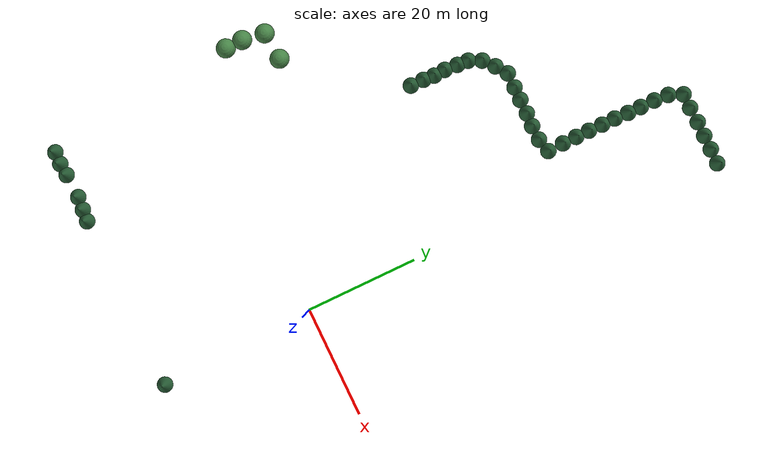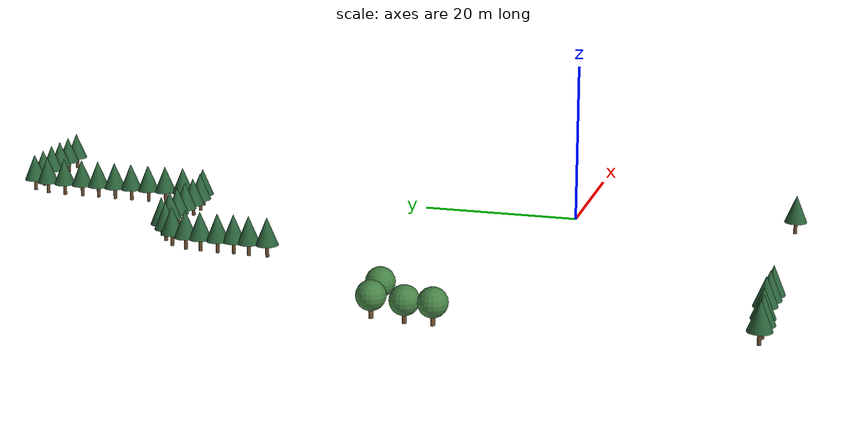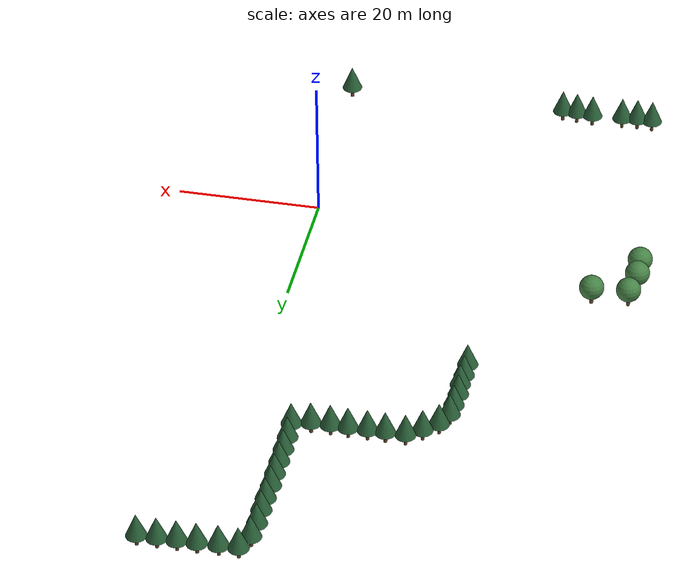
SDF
<sdf version="1.9">
 <world name="campus_pucrs">
  <model name="oak_tree_29">
   <static>true</static>
   <link name="link">
    <collision name="trunk_collision">
     <pose>-46.5377 6.48958 0.8 0.0 0.0 0</pose>
     <geometry><cylinder><radius>0.25</radius><length>1.6</length></cylinder></geometry>
    </collision>
    <visual name="trunk_visual">
     <pose>-46.5377 6.48958 0.8 0.0 0.0 0</pose>
     <geometry><cylinder><radius>0.25</radius><length>1.6</length></cylinder></geometry>
     <material><ambient>0.252 0.180 0.108 1</ambient><diffuse>0.42 0.3 0.18 1</diffuse></material>
    </visual>
    <visual name="crown_visual">
     <pose>-46.5377 6.48958 2.6 0 0 0</pose>
     <geometry><sphere><radius>1.7</radius></sphere></geometry>
     <material><ambient>0.168 0.312 0.168 1</ambient><diffuse>0.28 0.52 0.28 1</diffuse></material>
    </visual>
   </link>
  </model>
  <model name="oak_tree_30">
   <static>true</static>
   <link name="link">
    <collision name="trunk_collision">
     <pose>-46.6255 9.61611 0.8 0.0 0.0 0</pose>
     <geometry><cylinder><radius>0.25</radius><length>1.6</length></cylinder></geometry>
    </collision>
    <visual name="trunk_visual">
     <pose>-46.6255 9.61611 0.8 0.0 0.0 0</pose>
     <geometry><cylinder><radius>0.25</radius><length>1.6</length></cylinder></geometry>
     <material><ambient>0.252 0.180 0.108 1</ambient><diffuse>0.42 0.3 0.18 1</diffuse></material>
    </visual>
    <visual name="crown_visual">
     <pose>-46.6255 9.61611 2.6 0 0 0</pose>
     <geometry><sphere><radius>1.7</radius></sphere></geometry>
     <material><ambient>0.168 0.312 0.168 1</ambient><diffuse>0.28 0.52 0.28 1</diffuse></material>
    </visual>
   </link>
  </model>
  <model name="oak_tree_31">
   <static>true</static>
   <link name="link">
    <collision name="trunk_collision">
     <pose>-46.0 13.5661 0.8 0.0 0.0 0</pose>
     <geometry><cylinder><radius>0.25</radius><length>1.6</length></cylinder></geometry>
    </collision>
    <visual name="trunk_visual">
     <pose>-46.0 13.5661 0.8 0.0 0.0 0</pose>
     <geometry><cylinder><radius>0.25</radius><length>1.6</length></cylinder></geometry>
     <material><ambient>0.252 0.180 0.108 1</ambient><diffuse>0.42 0.3 0.18 1</diffuse></material>
    </visual>
    <visual name="crown_visual">
     <pose>-46.0 13.5661 2.6 0 0 0</pose>
     <geometry><sphere><radius>1.7</radius></sphere></geometry>
     <material><ambient>0.168 0.312 0.168 1</ambient><diffuse>0.28 0.52 0.28 1</diffuse></material>
    </visual>
   </link>
  </model>
  <model name="oak_tree_32">
   <static>true</static>
   <link name="link">
    <collision name="trunk_collision">
     <pose>-41.0 14.0 0.8 0.0 0.0 0</pose>
     <geometry><cylinder><radius>0.25</radius><length>1.6</length></cylinder></geometry>
    </collision>
    <visual name="trunk_visual">
     <pose>-41.0 14.0 0.8 0.0 0.0 0</pose>
     <geometry><cylinder><radius>0.25</radius><length>1.6</length></cylinder></geometry>
     <material><ambient>0.252 0.180 0.108 1</ambient><diffuse>0.42 0.3 0.18 1</diffuse></material>
    </visual>
    <visual name="crown_visual">
     <pose>-41.0 14.0 2.6 0 0 0</pose>
     <geometry><sphere><radius>1.7</radius></sphere></geometry>
     <material><ambient>0.168 0.312 0.168 1</ambient><diffuse>0.28 0.52 0.28 1</diffuse></material>
    </visual>
   </link>
  </model>
  <model name="pine_tree_0">
   <static>true</static>
   <link name="link">
    <collision name="trunk_collision">
     <pose>-43.1953 -27.683 0.95 0.0 0.0 0</pose>
     <geometry><cylinder><radius>0.22</radius><length>1.9</length></cylinder></geometry>
    </collision>
    <visual name="trunk_visual">
     <pose>-43.1953 -27.683 0.95 0.0 0.0 0</pose>
     <geometry><cylinder><radius>0.22</radius><length>1.9</length></cylinder></geometry>
     <material><ambient>0.228 0.162 0.096 1</ambient><diffuse>0.38 0.27 0.16 1</diffuse></material>
    </visual>
    <visual name="crown_visual">
     <pose>-43.1953 -27.683 3.2 0 0 0</pose>
     <geometry><cone><radius>1.4</radius><length>3.4</length></cone></geometry>
     <material><ambient>0.096 0.228 0.132 1</ambient><diffuse>0.16 0.38 0.22 1</diffuse></material>
    </visual>
   </link>
  </model>
  <model name="pine_tree_1">
   <static>true</static>
   <link name="link">
    <collision name="trunk_collision">
     <pose>-38.8581 -27.6066 0.95 0.0 0.0 0</pose>
     <geometry><cylinder><radius>0.22</radius><length>1.9</length></cylinder></geometry>
    </collision>
    <visual name="trunk_visual">
     <pose>-38.8581 -27.6066 0.95 0.0 0.0 0</pose>
     <geometry><cylinder><radius>0.22</radius><length>1.9</length></cylinder></geometry>
     <material><ambient>0.228 0.162 0.096 1</ambient><diffuse>0.38 0.27 0.16 1</diffuse></material>
    </visual>
    <visual name="crown_visual">
     <pose>-38.8581 -27.6066 3.2 0 0 0</pose>
     <geometry><cone><radius>1.4</radius><length>3.4</length></cone></geometry>
     <material><ambient>0.096 0.228 0.132 1</ambient><diffuse>0.16 0.38 0.22 1</diffuse></material>
    </visual>
   </link>
  </model>
  <model name="pine_tree_2">
   <static>true</static>
   <link name="link">
    <collision name="trunk_collision">
     <pose>-41.0353 -27.7768 0.95 0.0 0.0 0</pose>
     <geometry><cylinder><radius>0.22</radius><length>1.9</length></cylinder></geometry>
    </collision>
    <visual name="trunk_visual">
     <pose>-41.0353 -27.7768 0.95 0.0 0.0 0</pose>
     <geometry><cylinder><radius>0.22</radius><length>1.9</length></cylinder></geometry>
     <material><ambient>0.228 0.162 0.096 1</ambient><diffuse>0.38 0.27 0.16 1</diffuse></material>
    </visual>
    <visual name="crown_visual">
     <pose>-41.0353 -27.7768 3.2 0 0 0</pose>
     <geometry><cone><radius>1.4</radius><length>3.4</length></cone></geometry>
     <material><ambient>0.096 0.228 0.132 1</ambient><diffuse>0.16 0.38 0.22 1</diffuse></material>
    </visual>
   </link>
  </model>
  <model name="pine_tree_3">
   <static>true</static>
   <link name="link">
    <collision name="trunk_collision">
     <pose>-34.5668 -27.4351 0.95 0.0 0.0 0</pose>
     <geometry><cylinder><radius>0.22</radius><length>1.9</length></cylinder></geometry>
    </collision>
    <visual name="trunk_visual">
     <pose>-34.5668 -27.4351 0.95 0.0 0.0 0</pose>
     <geometry><cylinder><radius>0.22</radius><length>1.9</length></cylinder></geometry>
     <material><ambient>0.228 0.162 0.096 1</ambient><diffuse>0.38 0.27 0.16 1</diffuse></material>
    </visual>
    <visual name="crown_visual">
     <pose>-34.5668 -27.4351 3.2 0 0 0</pose>
     <geometry><cone><radius>1.4</radius><length>3.4</length></cone></geometry>
     <material><ambient>0.096 0.228 0.132 1</ambient><diffuse>0.16 0.38 0.22 1</diffuse></material>
    </visual>
   </link>
  </model>
  <model name="pine_tree_4">
   <static>true</static>
   <link name="link">
    <collision name="trunk_collision">
     <pose>0.909109 -27.8165 0.95 0.0 0.0 0</pose>
     <geometry><cylinder><radius>0.22</radius><length>1.9</length></cylinder></geometry>
    </collision>
    <visual name="trunk_visual">
     <pose>0.909109 -27.8165 0.95 0.0 0.0 0</pose>
     <geometry><cylinder><radius>0.22</radius><length>1.9</length></cylinder></geometry>
     <material><ambient>0.228 0.162 0.096 1</ambient><diffuse>0.38 0.27 0.16 1</diffuse></material>
    </visual>
    <visual name="crown_visual">
     <pose>0.909109 -27.8165 3.2 0 0 0</pose>
     <geometry><cone><radius>1.4</radius><length>3.4</length></cone></geometry>
     <material><ambient>0.096 0.228 0.132 1</ambient><diffuse>0.16 0.38 0.22 1</diffuse></material>
    </visual>
   </link>
  </model>
  <model name="pine_tree_5">
   <static>true</static>
   <link name="link">
    <collision name="trunk_collision">
     <pose>7.37787 74.1036 0.95 0.0 0.0 0</pose>
     <geometry><cylinder><radius>0.22</radius><length>1.9</length></cylinder></geometry>
    </collision>
    <visual name="trunk_visual">
     <pose>7.37787 74.1036 0.95 0.0 0.0 0</pose>
     <geometry><cylinder><radius>0.22</radius><length>1.9</length></cylinder></geometry>
     <material><ambient>0.228 0.162 0.096 1</ambient><diffuse>0.38 0.27 0.16 1</diffuse></material>
    </visual>
    <visual name="crown_visual">
     <pose>7.37787 74.1036 3.2 0 0 0</pose>
     <geometry><cone><radius>1.4</radius><length>3.4</length></cone></geometry>
     <material><ambient>0.096 0.228 0.132 1</ambient><diffuse>0.16 0.38 0.22 1</diffuse></material>
    </visual>
   </link>
  </model>
  <model name="pine_tree_6">
   <static>true</static>
   <link name="link">
    <collision name="trunk_collision">
     <pose>4.73226 74.1318 0.95 0.0 0.0 0</pose>
     <geometry><cylinder><radius>0.22</radius><length>1.9</length></cylinder></geometry>
    </collision>
    <visual name="trunk_visual">
     <pose>4.73226 74.1318 0.95 0.0 0.0 0</pose>
     <geometry><cylinder><radius>0.22</radius><length>1.9</length></cylinder></geometry>
     <material><ambient>0.228 0.162 0.096 1</ambient><diffuse>0.38 0.27 0.16 1</diffuse></material>
    </visual>
    <visual name="crown_visual">
     <pose>4.73226 74.1318 3.2 0 0 0</pose>
     <geometry><cone><radius>1.4</radius><length>3.4</length></cone></geometry>
     <material><ambient>0.096 0.228 0.132 1</ambient><diffuse>0.16 0.38 0.22 1</diffuse></material>
    </visual>
   </link>
  </model>
  <model name="pine_tree_7">
   <static>true</static>
   <link name="link">
    <collision name="trunk_collision">
     <pose>2.14216 74.1287 0.95 0.0 0.0 0</pose>
     <geometry><cylinder><radius>0.22</radius><length>1.9</length></cylinder></geometry>
    </collision>
    <visual name="trunk_visual">
     <pose>2.14216 74.1287 0.95 0.0 0.0 0</pose>
     <geometry><cylinder><radius>0.22</radius><length>1.9</length></cylinder></geometry>
     <material><ambient>0.228 0.162 0.096 1</ambient><diffuse>0.38 0.27 0.16 1</diffuse></material>
    </visual>
    <visual name="crown_visual">
     <pose>2.14216 74.1287 3.2 0 0 0</pose>
     <geometry><cone><radius>1.4</radius><length>3.4</length></cone></geometry>
     <material><ambient>0.096 0.228 0.132 1</ambient><diffuse>0.16 0.38 0.22 1</diffuse></material>
    </visual>
   </link>
  </model>
  <model name="pine_tree_8">
   <static>true</static>
   <link name="link">
    <collision name="trunk_collision">
     <pose>-0.447945 74.1256 0.95 0.0 0.0 0</pose>
     <geometry><cylinder><radius>0.22</radius><length>1.9</length></cylinder></geometry>
    </collision>
    <visual name="trunk_visual">
     <pose>-0.447945 74.1256 0.95 0.0 0.0 0</pose>
     <geometry><cylinder><radius>0.22</radius><length>1.9</length></cylinder></geometry>
     <material><ambient>0.228 0.162 0.096 1</ambient><diffuse>0.38 0.27 0.16 1</diffuse></material>
    </visual>
    <visual name="crown_visual">
     <pose>-0.447945 74.1256 3.2 0 0 0</pose>
     <geometry><cone><radius>1.4</radius><length>3.4</length></cone></geometry>
     <material><ambient>0.096 0.228 0.132 1</ambient><diffuse>0.16 0.38 0.22 1</diffuse></material>
    </visual>
   </link>
  </model>
  <model name="pine_tree_9">
   <static>true</static>
   <link name="link">
    <collision name="trunk_collision">
     <pose>-3.21715 73.9974 0.95 0.0 0.0 0</pose>
     <geometry><cylinder><radius>0.22</radius><length>1.9</length></cylinder></geometry>
    </collision>
    <visual name="trunk_visual">
     <pose>-3.21715 73.9974 0.95 0.0 0.0 0</pose>
     <geometry><cylinder><radius>0.22</radius><length>1.9</length></cylinder></geometry>
     <material><ambient>0.228 0.162 0.096 1</ambient><diffuse>0.38 0.27 0.16 1</diffuse></material>
    </visual>
    <visual name="crown_visual">
     <pose>-3.21715 73.9974 3.2 0 0 0</pose>
     <geometry><cone><radius>1.4</radius><length>3.4</length></cone></geometry>
     <material><ambient>0.096 0.228 0.132 1</ambient><diffuse>0.16 0.38 0.22 1</diffuse></material>
    </visual>
   </link>
  </model>
  <model name="pine_tree_10">
   <static>true</static>
   <link name="link">
    <collision name="trunk_collision">
     <pose>-5.79965 73.9827 0.95 0.0 0.0 0</pose>
     <geometry><cylinder><radius>0.22</radius><length>1.9</length></cylinder></geometry>
    </collision>
    <visual name="trunk_visual">
     <pose>-5.79965 73.9827 0.95 0.0 0.0 0</pose>
     <geometry><cylinder><radius>0.22</radius><length>1.9</length></cylinder></geometry>
     <material><ambient>0.228 0.162 0.096 1</ambient><diffuse>0.38 0.27 0.16 1</diffuse></material>
    </visual>
    <visual name="crown_visual">
     <pose>-5.79965 73.9827 3.2 0 0 0</pose>
     <geometry><cone><radius>1.4</radius><length>3.4</length></cone></geometry>
     <material><ambient>0.096 0.228 0.132 1</ambient><diffuse>0.16 0.38 0.22 1</diffuse></material>
    </visual>
   </link>
  </model>
  <model name="pine_tree_11">
   <static>true</static>
   <link name="link">
    <collision name="trunk_collision">
     <pose>-6.84033 71.5701 0.95 0.0 0.0 0</pose>
     <geometry><cylinder><radius>0.22</radius><length>1.9</length></cylinder></geometry>
    </collision>
    <visual name="trunk_visual">
     <pose>-6.84033 71.5701 0.95 0.0 0.0 0</pose>
     <geometry><cylinder><radius>0.22</radius><length>1.9</length></cylinder></geometry>
     <material><ambient>0.228 0.162 0.096 1</ambient><diffuse>0.38 0.27 0.16 1</diffuse></material>
    </visual>
    <visual name="crown_visual">
     <pose>-6.84033 71.5701 3.2 0 0 0</pose>
     <geometry><cone><radius>1.4</radius><length>3.4</length></cone></geometry>
     <material><ambient>0.096 0.228 0.132 1</ambient><diffuse>0.16 0.38 0.22 1</diffuse></material>
    </visual>
   </link>
  </model>
  <model name="pine_tree_12">
   <static>true</static>
   <link name="link">
    <collision name="trunk_collision">
     <pose>-7.00989 68.9932 0.95 0.0 0.0 0</pose>
     <geometry><cylinder><radius>0.22</radius><length>1.9</length></cylinder></geometry>
    </collision>
    <visual name="trunk_visual">
     <pose>-7.00989 68.9932 0.95 0.0 0.0 0</pose>
     <geometry><cylinder><radius>0.22</radius><length>1.9</length></cylinder></geometry>
     <material><ambient>0.228 0.162 0.096 1</ambient><diffuse>0.38 0.27 0.16 1</diffuse></material>
    </visual>
    <visual name="crown_visual">
     <pose>-7.00989 68.9932 3.2 0 0 0</pose>
     <geometry><cone><radius>1.4</radius><length>3.4</length></cone></geometry>
     <material><ambient>0.096 0.228 0.132 1</ambient><diffuse>0.16 0.38 0.22 1</diffuse></material>
    </visual>
   </link>
  </model>
  <model name="pine_tree_13">
   <static>true</static>
   <link name="link">
    <collision name="trunk_collision">
     <pose>-6.99518 66.4107 0.95 0.0 0.0 0</pose>
     <geometry><cylinder><radius>0.22</radius><length>1.9</length></cylinder></geometry>
    </collision>
    <visual name="trunk_visual">
     <pose>-6.99518 66.4107 0.95 0.0 0.0 0</pose>
     <geometry><cylinder><radius>0.22</radius><length>1.9</length></cylinder></geometry>
     <material><ambient>0.228 0.162 0.096 1</ambient><diffuse>0.38 0.27 0.16 1</diffuse></material>
    </visual>
    <visual name="crown_visual">
     <pose>-6.99518 66.4107 3.2 0 0 0</pose>
     <geometry><cone><radius>1.4</radius><length>3.4</length></cone></geometry>
     <material><ambient>0.096 0.228 0.132 1</ambient><diffuse>0.16 0.38 0.22 1</diffuse></material>
    </visual>
   </link>
  </model>
  <model name="pine_tree_14">
   <static>true</static>
   <link name="link">
    <collision name="trunk_collision">
     <pose>-7.02101 64.0138 0.95 0.0 0.0 0</pose>
     <geometry><cylinder><radius>0.22</radius><length>1.9</length></cylinder></geometry>
    </collision>
    <visual name="trunk_visual">
     <pose>-7.02101 64.0138 0.95 0.0 0.0 0</pose>
     <geometry><cylinder><radius>0.22</radius><length>1.9</length></cylinder></geometry>
     <material><ambient>0.228 0.162 0.096 1</ambient><diffuse>0.38 0.27 0.16 1</diffuse></material>
    </visual>
    <visual name="crown_visual">
     <pose>-7.02101 64.0138 3.2 0 0 0</pose>
     <geometry><cone><radius>1.4</radius><length>3.4</length></cone></geometry>
     <material><ambient>0.096 0.228 0.132 1</ambient><diffuse>0.16 0.38 0.22 1</diffuse></material>
    </visual>
   </link>
  </model>
  <model name="pine_tree_15">
   <static>true</static>
   <link name="link">
    <collision name="trunk_collision">
     <pose>-7.14173 61.5276 0.95 0.0 0.0 0</pose>
     <geometry><cylinder><radius>0.22</radius><length>1.9</length></cylinder></geometry>
    </collision>
    <visual name="trunk_visual">
     <pose>-7.14173 61.5276 0.95 0.0 0.0 0</pose>
     <geometry><cylinder><radius>0.22</radius><length>1.9</length></cylinder></geometry>
     <material><ambient>0.228 0.162 0.096 1</ambient><diffuse>0.38 0.27 0.16 1</diffuse></material>
    </visual>
    <visual name="crown_visual">
     <pose>-7.14173 61.5276 3.2 0 0 0</pose>
     <geometry><cone><radius>1.4</radius><length>3.4</length></cone></geometry>
     <material><ambient>0.096 0.228 0.132 1</ambient><diffuse>0.16 0.38 0.22 1</diffuse></material>
    </visual>
   </link>
  </model>
  <model name="pine_tree_16">
   <static>true</static>
   <link name="link">
    <collision name="trunk_collision">
     <pose>-7.1215 59.1294 0.95 0.0 0.0 0</pose>
     <geometry><cylinder><radius>0.22</radius><length>1.9</length></cylinder></geometry>
    </collision>
    <visual name="trunk_visual">
     <pose>-7.1215 59.1294 0.95 0.0 0.0 0</pose>
     <geometry><cylinder><radius>0.22</radius><length>1.9</length></cylinder></geometry>
     <material><ambient>0.228 0.162 0.096 1</ambient><diffuse>0.38 0.27 0.16 1</diffuse></material>
    </visual>
    <visual name="crown_visual">
     <pose>-7.1215 59.1294 3.2 0 0 0</pose>
     <geometry><cone><radius>1.4</radius><length>3.4</length></cone></geometry>
     <material><ambient>0.096 0.228 0.132 1</ambient><diffuse>0.16 0.38 0.22 1</diffuse></material>
    </visual>
   </link>
  </model>
  <model name="pine_tree_17">
   <static>true</static>
   <link name="link">
    <collision name="trunk_collision">
     <pose>-7.15009 56.6404 0.95 0.0 0.0 0</pose>
     <geometry><cylinder><radius>0.22</radius><length>1.9</length></cylinder></geometry>
    </collision>
    <visual name="trunk_visual">
     <pose>-7.15009 56.6404 0.95 0.0 0.0 0</pose>
     <geometry><cylinder><radius>0.22</radius><length>1.9</length></cylinder></geometry>
     <material><ambient>0.228 0.162 0.096 1</ambient><diffuse>0.38 0.27 0.16 1</diffuse></material>
    </visual>
    <visual name="crown_visual">
     <pose>-7.15009 56.6404 3.2 0 0 0</pose>
     <geometry><cone><radius>1.4</radius><length>3.4</length></cone></geometry>
     <material><ambient>0.096 0.228 0.132 1</ambient><diffuse>0.16 0.38 0.22 1</diffuse></material>
    </visual>
   </link>
  </model>
  <model name="pine_tree_18">
   <static>true</static>
   <link name="link">
    <collision name="trunk_collision">
     <pose>-7.13522 54.1948 0.95 0.0 0.0 0</pose>
     <geometry><cylinder><radius>0.22</radius><length>1.9</length></cylinder></geometry>
    </collision>
    <visual name="trunk_visual">
     <pose>-7.13522 54.1948 0.95 0.0 0.0 0</pose>
     <geometry><cylinder><radius>0.22</radius><length>1.9</length></cylinder></geometry>
     <material><ambient>0.228 0.162 0.096 1</ambient><diffuse>0.38 0.27 0.16 1</diffuse></material>
    </visual>
    <visual name="crown_visual">
     <pose>-7.13522 54.1948 3.2 0 0 0</pose>
     <geometry><cone><radius>1.4</radius><length>3.4</length></cone></geometry>
     <material><ambient>0.096 0.228 0.132 1</ambient><diffuse>0.16 0.38 0.22 1</diffuse></material>
    </visual>
   </link>
  </model>
  <model name="pine_tree_19">
   <static>true</static>
   <link name="link">
    <collision name="trunk_collision">
     <pose>-7.11569 51.6635 0.95 0.0 0.0 0</pose>
     <geometry><cylinder><radius>0.22</radius><length>1.9</length></cylinder></geometry>
    </collision>
    <visual name="trunk_visual">
     <pose>-7.11569 51.6635 0.95 0.0 0.0 0</pose>
     <geometry><cylinder><radius>0.22</radius><length>1.9</length></cylinder></geometry>
     <material><ambient>0.228 0.162 0.096 1</ambient><diffuse>0.38 0.27 0.16 1</diffuse></material>
    </visual>
    <visual name="crown_visual">
     <pose>-7.11569 51.6635 3.2 0 0 0</pose>
     <geometry><cone><radius>1.4</radius><length>3.4</length></cone></geometry>
     <material><ambient>0.096 0.228 0.132 1</ambient><diffuse>0.16 0.38 0.22 1</diffuse></material>
    </visual>
   </link>
  </model>
  <model name="pine_tree_20">
   <static>true</static>
   <link name="link">
    <collision name="trunk_collision">
     <pose>-6.99927 48.8348 0.95 0.0 0.0 0</pose>
     <geometry><cylinder><radius>0.22</radius><length>1.9</length></cylinder></geometry>
    </collision>
    <visual name="trunk_visual">
     <pose>-6.99927 48.8348 0.95 0.0 0.0 0</pose>
     <geometry><cylinder><radius>0.22</radius><length>1.9</length></cylinder></geometry>
     <material><ambient>0.228 0.162 0.096 1</ambient><diffuse>0.38 0.27 0.16 1</diffuse></material>
    </visual>
    <visual name="crown_visual">
     <pose>-6.99927 48.8348 3.2 0 0 0</pose>
     <geometry><cone><radius>1.4</radius><length>3.4</length></cone></geometry>
     <material><ambient>0.096 0.228 0.132 1</ambient><diffuse>0.16 0.38 0.22 1</diffuse></material>
    </visual>
   </link>
  </model>
  <model name="pine_tree_21">
   <static>true</static>
   <link name="link">
    <collision name="trunk_collision">
     <pose>-9.46967 48.2278 0.95 0.0 0.0 0</pose>
     <geometry><cylinder><radius>0.22</radius><length>1.9</length></cylinder></geometry>
    </collision>
    <visual name="trunk_visual">
     <pose>-9.46967 48.2278 0.95 0.0 0.0 0</pose>
     <geometry><cylinder><radius>0.22</radius><length>1.9</length></cylinder></geometry>
     <material><ambient>0.228 0.162 0.096 1</ambient><diffuse>0.38 0.27 0.16 1</diffuse></material>
    </visual>
    <visual name="crown_visual">
     <pose>-9.46967 48.2278 3.2 0 0 0</pose>
     <geometry><cone><radius>1.4</radius><length>3.4</length></cone></geometry>
     <material><ambient>0.096 0.228 0.132 1</ambient><diffuse>0.16 0.38 0.22 1</diffuse></material>
    </visual>
   </link>
  </model>
  <model name="pine_tree_22">
   <static>true</static>
   <link name="link">
    <collision name="trunk_collision">
     <pose>-12.0598 48.1693 0.95 0.0 0.0 0</pose>
     <geometry><cylinder><radius>0.22</radius><length>1.9</length></cylinder></geometry>
    </collision>
    <visual name="trunk_visual">
     <pose>-12.0598 48.1693 0.95 0.0 0.0 0</pose>
     <geometry><cylinder><radius>0.22</radius><length>1.9</length></cylinder></geometry>
     <material><ambient>0.228 0.162 0.096 1</ambient><diffuse>0.38 0.27 0.16 1</diffuse></material>
    </visual>
    <visual name="crown_visual">
     <pose>-12.0598 48.1693 3.2 0 0 0</pose>
     <geometry><cone><radius>1.4</radius><length>3.4</length></cone></geometry>
     <material><ambient>0.096 0.228 0.132 1</ambient><diffuse>0.16 0.38 0.22 1</diffuse></material>
    </visual>
   </link>
  </model>
  <model name="pine_tree_23">
   <static>true</static>
   <link name="link">
    <collision name="trunk_collision">
     <pose>-25.9063 45.2699 0.95 0.0 0.0 0</pose>
     <geometry><cylinder><radius>0.22</radius><length>1.9</length></cylinder></geometry>
    </collision>
    <visual name="trunk_visual">
     <pose>-25.9063 45.2699 0.95 0.0 0.0 0</pose>
     <geometry><cylinder><radius>0.22</radius><length>1.9</length></cylinder></geometry>
     <material><ambient>0.228 0.162 0.096 1</ambient><diffuse>0.38 0.27 0.16 1</diffuse></material>
    </visual>
    <visual name="crown_visual">
     <pose>-25.9063 45.2699 3.2 0 0 0</pose>
     <geometry><cone><radius>1.4</radius><length>3.4</length></cone></geometry>
     <material><ambient>0.096 0.228 0.132 1</ambient><diffuse>0.16 0.38 0.22 1</diffuse></material>
    </visual>
   </link>
  </model>
  <model name="pine_tree_24">
   <static>true</static>
   <link name="link">
    <collision name="trunk_collision">
     <pose>-24.0411 46.894 0.95 0.0 0.0 0</pose>
     <geometry><cylinder><radius>0.22</radius><length>1.9</length></cylinder></geometry>
    </collision>
    <visual name="trunk_visual">
     <pose>-24.0411 46.894 0.95 0.0 0.0 0</pose>
     <geometry><cylinder><radius>0.22</radius><length>1.9</length></cylinder></geometry>
     <material><ambient>0.228 0.162 0.096 1</ambient><diffuse>0.38 0.27 0.16 1</diffuse></material>
    </visual>
    <visual name="crown_visual">
     <pose>-24.0411 46.894 3.2 0 0 0</pose>
     <geometry><cone><radius>1.4</radius><length>3.4</length></cone></geometry>
     <material><ambient>0.096 0.228 0.132 1</ambient><diffuse>0.16 0.38 0.22 1</diffuse></material>
    </visual>
   </link>
  </model>
  <model name="pine_tree_25">
   <static>true</static>
   <link name="link">
    <collision name="trunk_collision">
     <pose>-22.0466 48.2874 0.95 0.0 0.0 0</pose>
     <geometry><cylinder><radius>0.22</radius><length>1.9</length></cylinder></geometry>
    </collision>
    <visual name="trunk_visual">
     <pose>-22.0466 48.2874 0.95 0.0 0.0 0</pose>
     <geometry><cylinder><radius>0.22</radius><length>1.9</length></cylinder></geometry>
     <material><ambient>0.228 0.162 0.096 1</ambient><diffuse>0.38 0.27 0.16 1</diffuse></material>
    </visual>
    <visual name="crown_visual">
     <pose>-22.0466 48.2874 3.2 0 0 0</pose>
     <geometry><cone><radius>1.4</radius><length>3.4</length></cone></geometry>
     <material><ambient>0.096 0.228 0.132 1</ambient><diffuse>0.16 0.38 0.22 1</diffuse></material>
    </visual>
   </link>
  </model>
  <model name="pine_tree_26">
   <static>true</static>
   <link name="link">
    <collision name="trunk_collision">
     <pose>-19.3671 48.2977 0.95 0.0 0.0 0</pose>
     <geometry><cylinder><radius>0.22</radius><length>1.9</length></cylinder></geometry>
    </collision>
    <visual name="trunk_visual">
     <pose>-19.3671 48.2977 0.95 0.0 0.0 0</pose>
     <geometry><cylinder><radius>0.22</radius><length>1.9</length></cylinder></geometry>
     <material><ambient>0.228 0.162 0.096 1</ambient><diffuse>0.38 0.27 0.16 1</diffuse></material>
    </visual>
    <visual name="crown_visual">
     <pose>-19.3671 48.2977 3.2 0 0 0</pose>
     <geometry><cone><radius>1.4</radius><length>3.4</length></cone></geometry>
     <material><ambient>0.096 0.228 0.132 1</ambient><diffuse>0.16 0.38 0.22 1</diffuse></material>
    </visual>
   </link>
  </model>
  <model name="pine_tree_27">
   <static>true</static>
   <link name="link">
    <collision name="trunk_collision">
     <pose>-14.4177 48.2854 0.95 0.0 0.0 0</pose>
     <geometry><cylinder><radius>0.22</radius><length>1.9</length></cylinder></geometry>
    </collision>
    <visual name="trunk_visual">
     <pose>-14.4177 48.2854 0.95 0.0 0.0 0</pose>
     <geometry><cylinder><radius>0.22</radius><length>1.9</length></cylinder></geometry>
     <material><ambient>0.228 0.162 0.096 1</ambient><diffuse>0.38 0.27 0.16 1</diffuse></material>
    </visual>
    <visual name="crown_visual">
     <pose>-14.4177 48.2854 3.2 0 0 0</pose>
     <geometry><cone><radius>1.4</radius><length>3.4</length></cone></geometry>
     <material><ambient>0.096 0.228 0.132 1</ambient><diffuse>0.16 0.38 0.22 1</diffuse></material>
    </visual>
   </link>
  </model>
  <model name="pine_tree_28">
   <static>true</static>
   <link name="link">
    <collision name="trunk_collision">
     <pose>-17.0065 48.2723 0.95 0.0 0.0 0</pose>
     <geometry><cylinder><radius>0.22</radius><length>1.9</length></cylinder></geometry>
    </collision>
    <visual name="trunk_visual">
     <pose>-17.0065 48.2723 0.95 0.0 0.0 0</pose>
     <geometry><cylinder><radius>0.22</radius><length>1.9</length></cylinder></geometry>
     <material><ambient>0.228 0.162 0.096 1</ambient><diffuse>0.38 0.27 0.16 1</diffuse></material>
    </visual>
    <visual name="crown_visual">
     <pose>-17.0065 48.2723 3.2 0 0 0</pose>
     <geometry><cone><radius>1.4</radius><length>3.4</length></cone></geometry>
     <material><ambient>0.096 0.228 0.132 1</ambient><diffuse>0.16 0.38 0.22 1</diffuse></material>
    </visual>
   </link>
  </model>
  <model name="pine_tree_29">
   <static>true</static>
   <link name="link">
    <collision name="trunk_collision">
     <pose>-27.2925 32.3694 0.95 0.0 0.0 0</pose>
     <geometry><cylinder><radius>0.22</radius><length>1.9</length></cylinder></geometry>
    </collision>
    <visual name="trunk_visual">
     <pose>-27.2925 32.3694 0.95 0.0 0.0 0</pose>
     <geometry><cylinder><radius>0.22</radius><length>1.9</length></cylinder></geometry>
     <material><ambient>0.228 0.162 0.096 1</ambient><diffuse>0.38 0.27 0.16 1</diffuse></material>
    </visual>
    <visual name="crown_visual">
     <pose>-27.2925 32.3694 3.2 0 0 0</pose>
     <geometry><cone><radius>1.4</radius><length>3.4</length></cone></geometry>
     <material><ambient>0.096 0.228 0.132 1</ambient><diffuse>0.16 0.38 0.22 1</diffuse></material>
    </visual>
   </link>
  </model>
  <model name="pine_tree_30">
   <static>true</static>
   <link name="link">
    <collision name="trunk_collision">
     <pose>-27.2671 34.73 0.95 0.0 0.0 0</pose>
     <geometry><cylinder><radius>0.22</radius><length>1.9</length></cylinder></geometry>
    </collision>
    <visual name="trunk_visual">
     <pose>-27.2671 34.73 0.95 0.0 0.0 0</pose>
     <geometry><cylinder><radius>0.22</radius><length>1.9</length></cylinder></geometry>
     <material><ambient>0.228 0.162 0.096 1</ambient><diffuse>0.38 0.27 0.16 1</diffuse></material>
    </visual>
    <visual name="crown_visual">
     <pose>-27.2671 34.73 3.2 0 0 0</pose>
     <geometry><cone><radius>1.4</radius><length>3.4</length></cone></geometry>
     <material><ambient>0.096 0.228 0.132 1</ambient><diffuse>0.16 0.38 0.22 1</diffuse></material>
    </visual>
   </link>
  </model>
  <model name="pine_tree_31">
   <static>true</static>
   <link name="link">
    <collision name="trunk_collision">
     <pose>-27.1164 36.7235 0.95 0.0 0.0 0</pose>
     <geometry><cylinder><radius>0.22</radius><length>1.9</length></cylinder></geometry>
    </collision>
    <visual name="trunk_visual">
     <pose>-27.1164 36.7235 0.95 0.0 0.0 0</pose>
     <geometry><cylinder><radius>0.22</radius><length>1.9</length></cylinder></geometry>
     <material><ambient>0.228 0.162 0.096 1</ambient><diffuse>0.38 0.27 0.16 1</diffuse></material>
    </visual>
    <visual name="crown_visual">
     <pose>-27.1164 36.7235 3.2 0 0 0</pose>
     <geometry><cone><radius>1.4</radius><length>3.4</length></cone></geometry>
     <material><ambient>0.096 0.228 0.132 1</ambient><diffuse>0.16 0.38 0.22 1</diffuse></material>
    </visual>
   </link>
  </model>
  <model name="pine_tree_32">
   <static>true</static>
   <link name="link">
    <collision name="trunk_collision">
     <pose>-27.2366 38.7706 0.95 0.0 0.0 0</pose>
     <geometry><cylinder><radius>0.22</radius><length>1.9</length></cylinder></geometry>
    </collision>
    <visual name="trunk_visual">
     <pose>-27.2366 38.7706 0.95 0.0 0.0 0</pose>
     <geometry><cylinder><radius>0.22</radius><length>1.9</length></cylinder></geometry>
     <material><ambient>0.228 0.162 0.096 1</ambient><diffuse>0.38 0.27 0.16 1</diffuse></material>
    </visual>
    <visual name="crown_visual">
     <pose>-27.2366 38.7706 3.2 0 0 0</pose>
     <geometry><cone><radius>1.4</radius><length>3.4</length></cone></geometry>
     <material><ambient>0.096 0.228 0.132 1</ambient><diffuse>0.16 0.38 0.22 1</diffuse></material>
    </visual>
   </link>
  </model>
  <model name="pine_tree_33">
   <static>true</static>
   <link name="link">
    <collision name="trunk_collision">
     <pose>-27.0765 41.0818 0.95 0.0 0.0 0</pose>
     <geometry><cylinder><radius>0.22</radius><length>1.9</length></cylinder></geometry>
    </collision>
    <visual name="trunk_visual">
     <pose>-27.0765 41.0818 0.95 0.0 0.0 0</pose>
     <geometry><cylinder><radius>0.22</radius><length>1.9</length></cylinder></geometry>
     <material><ambient>0.228 0.162 0.096 1</ambient><diffuse>0.38 0.27 0.16 1</diffuse></material>
    </visual>
    <visual name="crown_visual">
     <pose>-27.0765 41.0818 3.2 0 0 0</pose>
     <geometry><cone><radius>1.4</radius><length>3.4</length></cone></geometry>
     <material><ambient>0.096 0.228 0.132 1</ambient><diffuse>0.16 0.38 0.22 1</diffuse></material>
    </visual>
   </link>
  </model>
  <model name="pine_tree_34">
   <static>true</static>
   <link name="link">
    <collision name="trunk_collision">
     <pose>-26.9258 43.0753 0.95 0.0 0.0 0</pose>
     <geometry><cylinder><radius>0.22</radius><length>1.9</length></cylinder></geometry>
    </collision>
    <visual name="trunk_visual">
     <pose>-26.9258 43.0753 0.95 0.0 0.0 0</pose>
     <geometry><cylinder><radius>0.22</radius><length>1.9</length></cylinder></geometry>
     <material><ambient>0.228 0.162 0.096 1</ambient><diffuse>0.38 0.27 0.16 1</diffuse></material>
    </visual>
    <visual name="crown_visual">
     <pose>-26.9258 43.0753 3.2 0 0 0</pose>
     <geometry><cone><radius>1.4</radius><length>3.4</length></cone></geometry>
     <material><ambient>0.096 0.228 0.132 1</ambient><diffuse>0.16 0.38 0.22 1</diffuse></material>
    </visual>
   </link>
  </model>
  <model name="pine_tree_35">
   <static>true</static>
   <link name="link">
    <collision name="trunk_collision">
     <pose>-32.266 -27.6586 0.95 0.0 0.0 0</pose>
     <geometry><cylinder><radius>0.22</radius><length>1.9</length></cylinder></geometry>
    </collision>
    <visual name="trunk_visual">
     <pose>-32.266 -27.6586 0.95 0.0 0.0 0</pose>
     <geometry><cylinder><radius>0.22</radius><length>1.9</length></cylinder></geometry>
     <material><ambient>0.228 0.162 0.096 1</ambient><diffuse>0.38 0.27 0.16 1</diffuse></material>
    </visual>
    <visual name="crown_visual">
     <pose>-32.266 -27.6586 3.2 0 0 0</pose>
     <geometry><cone><radius>1.4</radius><length>3.4</length></cone></geometry>
     <material><ambient>0.096 0.228 0.132 1</ambient><diffuse>0.16 0.38 0.22 1</diffuse></material>
    </visual>
   </link>
  </model>
  <model name="pine_tree_36">
   <static>true</static>
   <link name="link">
    <collision name="trunk_collision">
     <pose>-30.1728 -27.8328 0.95 0.0 0.0 0</pose>
     <geometry><cylinder><radius>0.22</radius><length>1.9</length></cylinder></geometry>
    </collision>
    <visual name="trunk_visual">
     <pose>-30.1728 -27.8328 0.95 0.0 0.0 0</pose>
     <geometry><cylinder><radius>0.22</radius><length>1.9</length></cylinder></geometry>
     <material><ambient>0.228 0.162 0.096 1</ambient><diffuse>0.38 0.27 0.16 1</diffuse></material>
    </visual>
    <visual name="crown_visual">
     <pose>-30.1728 -27.8328 3.2 0 0 0</pose>
     <geometry><cone><radius>1.4</radius><length>3.4</length></cone></geometry>
     <material><ambient>0.096 0.228 0.132 1</ambient><diffuse>0.16 0.38 0.22 1</diffuse></material>
    </visual>
   </link>
  </model>
 </world>
</sdf>
